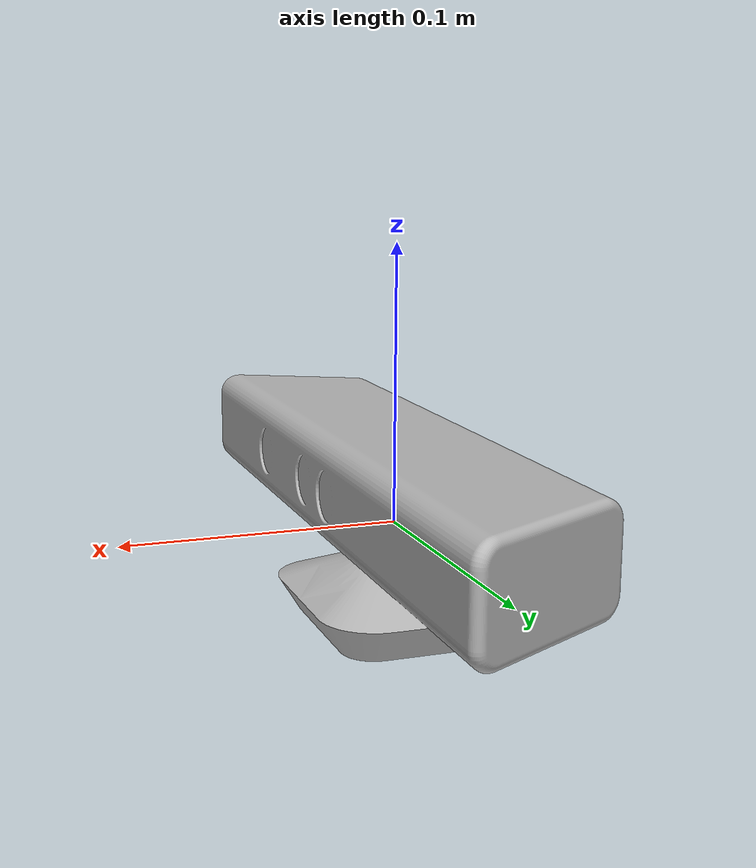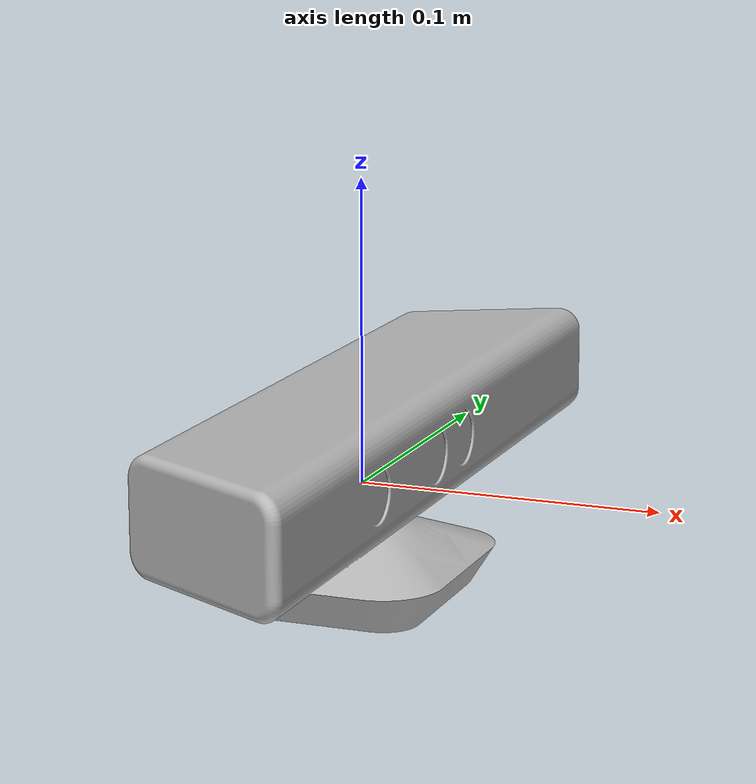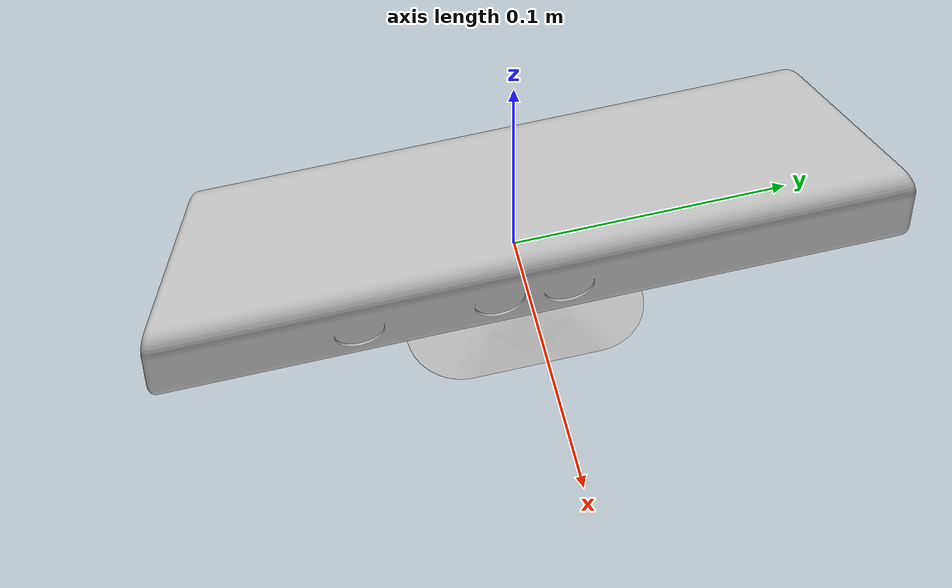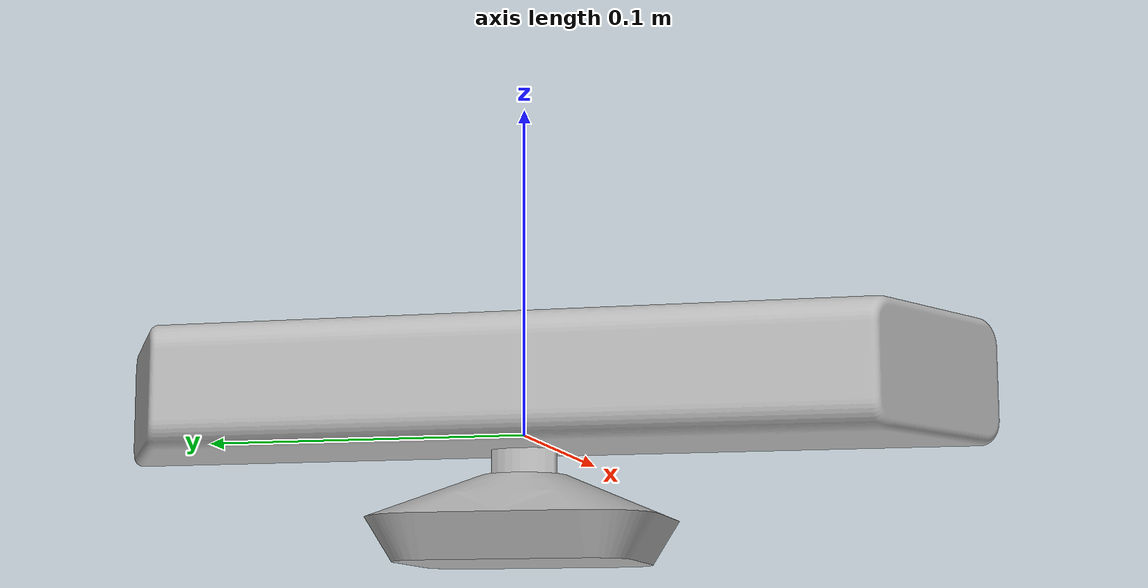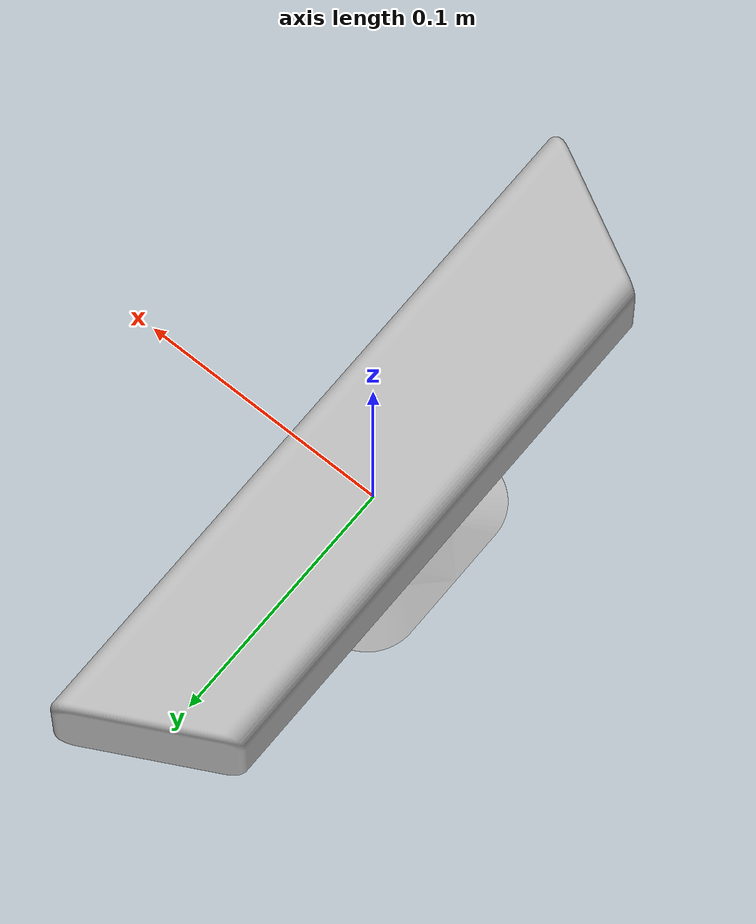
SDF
<?xml version="1.0" ?>
<sdf version="1.4">

    <model name='kinect2'>
      <pose>0 0 0 0 0 0</pose>
      <link name='kinect2_link'>
        <inertial>
          <mass>0.1</mass>
        </inertial>
        <collision name='collision'>
          <geometry>
            <box>
              <size>0.062 0.276 0.072</size>
            </box>
          </geometry>
          <max_contacts>10</max_contacts>
          <surface>
            <bounce/>
            <friction>
              <ode/>
            </friction>
            <contact>
              <ode/>
            </contact>
          </surface>
        </collision>
        <visual name='visual'>
          <pose>0.031 0 0.015 0 -0 0</pose>
          <geometry>
            <mesh>
              <uri>model://kinect/meshes/kinect.dae</uri>
            </mesh>
          </geometry>
        </visual>
        <sensor name='camera' type='depth'>
          <update_rate>20</update_rate>
          <camera name='__default__'>
            <horizontal_fov>1.0472</horizontal_fov>
            <image>
              <width>640</width>
              <height>480</height>
              <format>R8G8B8</format>
            </image>
            <clip>
              <near>0.05</near>
              <far>5</far>
            </clip>
          </camera>
          <plugin name='kinect2_camera_controller' filename='libgazebo_ros_openni_kinect.so'>
            <cameraName>kinect2</cameraName>
            <frameName>kinect2_depth_optical_frame</frameName>
            <baseline>0.2</baseline>
            <pointCloudCutoff>.5</pointCloudCutoff>
            <pointCloudCutoffMax>5.0</pointCloudCutoffMax>
            <alwaysOn>true</alwaysOn>
            <updateRate>30.0</updateRate>
            <imageTopicName>rgb/image_raw</imageTopicName>
            <depthImageTopicName>depth/image_raw</depthImageTopicName>
            <pointCloudTopicName>depth/points</pointCloudTopicName>
            <cameraInfoTopicName>rgb/camera_info</cameraInfoTopicName>
            <depthImageCameraInfoTopicName>depth/camera_info</depthImageCameraInfoTopicName>
          </plugin>
        </sensor>
        <velocity_decay>
          <linear>0</linear>
          <angular>0</angular>
        </velocity_decay>
        <self_collide>0</self_collide>
        <kinematic>0</kinematic>
        <gravity>1</gravity>
      </link>
      <static>1</static>
    </model>

</sdf>
